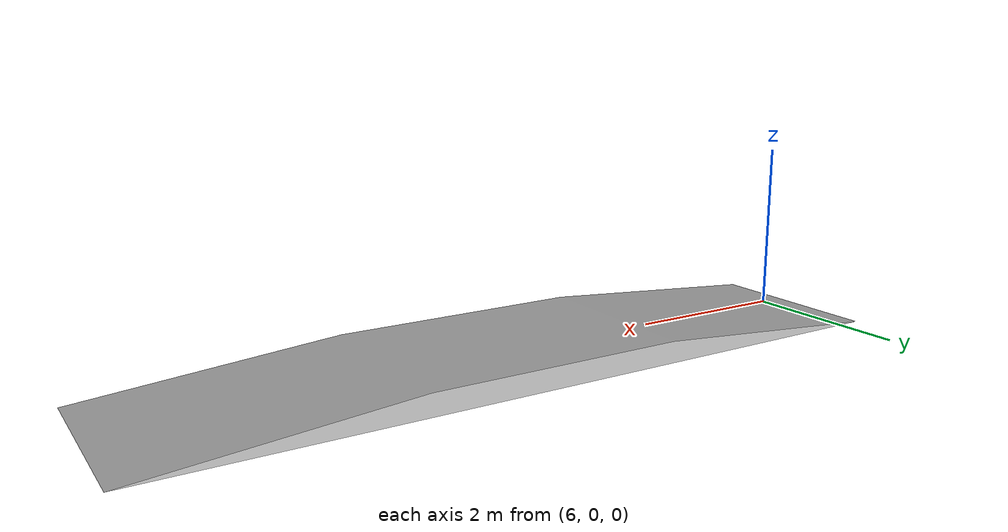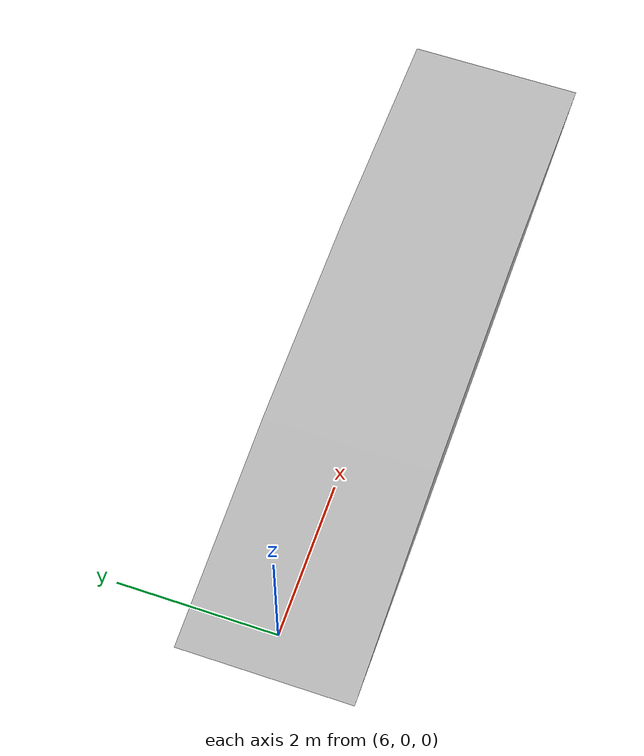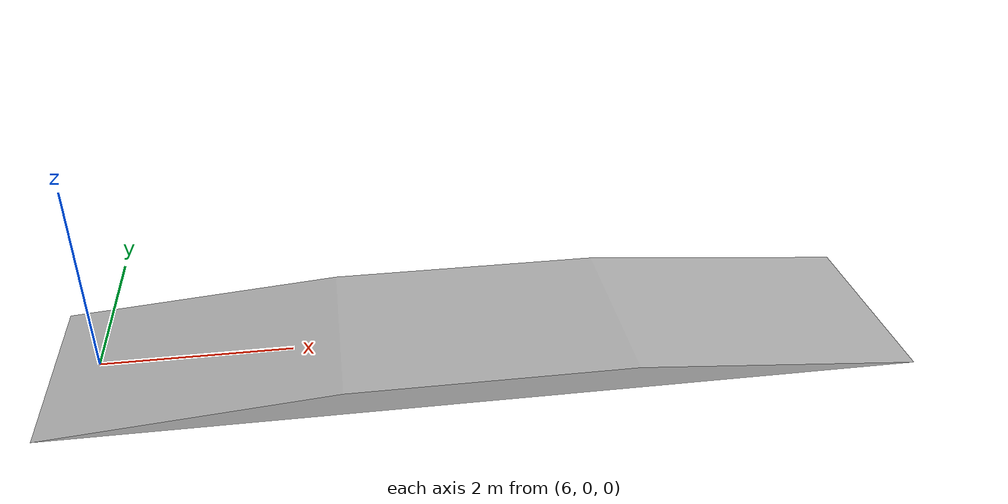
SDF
<?xml version="1.0" ?>
<sdf version="1.4">
    <model name="slope">
      <static>1</static>

      <material name="blue">
        <color rgba="0 0 0.8 1"/>
      </material>
      <material name="black">
        <color rgba="0 0 0 1"/>
      </material>
      <material name="white">
        <color rgba="1 1 1 1"/>
      </material>
      <material name="Green">
        <color rgba="0 1.0 0 1.0"/>
      </material>

      <link name="link">
        <inertial>
          <pose>0 0 0</pose>
          <mass>7944.129</mass>
          <inertia>
            <ixx>30450.20</ixx>
            <ixy>0</ixy>
            <ixz>0</ixz>
            <iyy>3242.6118</iyy>
            <iyz>-18.5216</iyz>
            <izz>33615.8563</izz>
          </inertia>
        </inertial>

         <collision name="collision">
         <pose>10 0 0.01 0 0 1.5707</pose>
          <geometry>
            <mesh>
                <uri>model://elements/meshes/slope_ERP42.dae</uri>
                <scale>1 1 1</scale>
            </mesh>
          </geometry>
           <surface>
        <friction>
          <ode>
            <mu>0.8</mu>
            <mu2>0.8</mu2>
          </ode>
        </friction>
      </surface>
        </collision>

        <visual name="visual">
          <pose>10 0 0.01 0 0 1.5707</pose>
          <geometry>
            <mesh>
                <uri>model://elements/meshes/slope_ERP42.dae</uri>
                <scale>1 1 1</scale>
            </mesh>
          </geometry>
        </visual>
      </link>

    </model>
</sdf>
